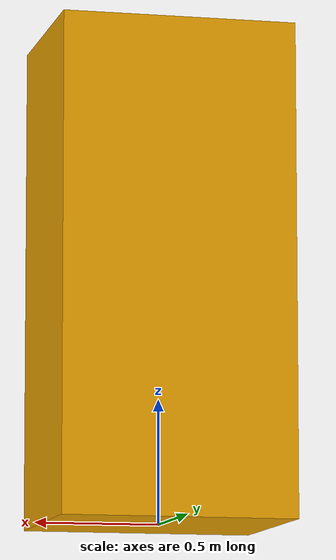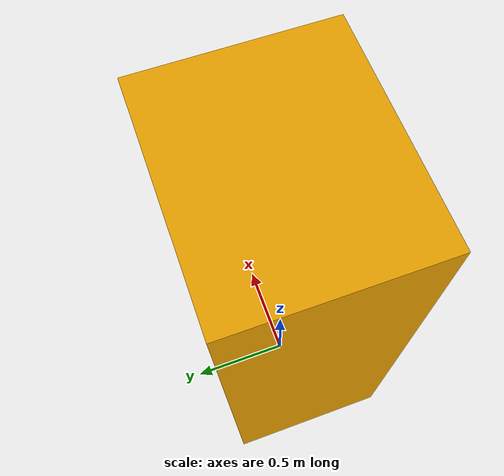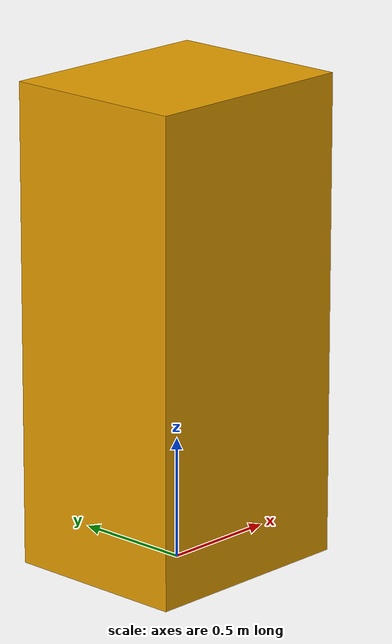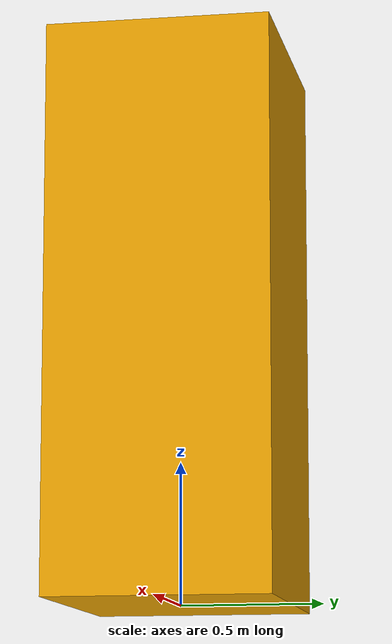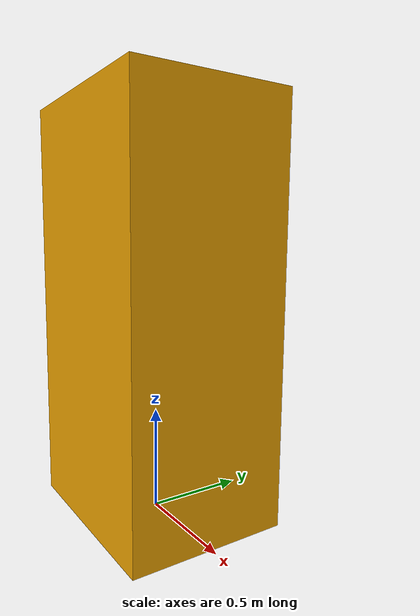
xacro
<?xml version="1.0"?>
<robot xmlns:xacro="http://www.ros.org/wiki/xacro" name="Robot">

<!--LINKS-->
  <link name="base">
    <visual>
	<origin xyz= "0 0 0.99" rpy = "0 0 0"/>
        <geometry>
                <box size= "0.94 0.78 1.98"/>
        </geometry>
    </visual>

    <collision>
	<origin xyz= "0 0 0.99" rpy = "0 0 0"/>
        <geometry>
                <box size= "0.94 0.78 1.98"/>
        </geometry>
    </collision>
  </link>

<link name="laser_vert_bottom">
    <visual>
        <geometry>
                <box size= "0.062 0.062 0.087"/>
        </geometry>
    </visual>

    <collision>
        <geometry>
                <box size= "0.062 0.062 0.087"/>
        </geometry>
    </collision>
  </link>

  <link name="laser_vert_top_right">
    <visual>
        <geometry>
                <box size= "0.062 0.062 0.087"/>
        </geometry>
    </visual>

    <collision>
        <geometry>
                <box size= "0.062 0.062 0.087"/>
        </geometry>
    </collision>
  </link>

  <link name="laser_vert_top_left">
    <visual>
        <geometry>
                <box size= "0.062 0.062 0.087"/>
        </geometry>
    </visual>

    <collision>
        <geometry>
                <box size= "0.062 0.062 0.087"/>
        </geometry>
    </collision>
  </link>

<link name="laser_horiz">
    <visual>
        <geometry>
                <cylinder radius= ".052" length= "0.072"/>
        </geometry>
    </visual>

    <collision>
        <geometry>
                <cylinder radius= ".052" length= "0.072"/>
        </geometry>
    </collision>
  </link>

<!--wheels-->
<xacro:macro name="xacro_name" params="suffix reflect">
<xacro:xacro_name suffix="left" reflect="1" />
<link name = "wheel_${suffix}">
        <visual>
                <origin xyz="-0.10 ${reflect * 0.4} 0" />
                <geometry>
                        <cylinder radius="0.2" length="0.05"/>
                </geometry>
         </visual>

        <collision>
                <origin xyz="-0.10 ${reflect * 0.4} 0" />
                <geometry>
                        <cylinder radius="0.2" length="0.05"/>
                </geometry>
        </collision>
</link>
<joint name="wheel_${suffix}" type="fixed">
        <origin xyz="-0.10 0.4 0.0" rpy="-1.57 0 0"/>
        <parent link="base"/>
        <child link="wheel_${suffix}"/>
</joint>
</xacro:macro>

<!-- right wheel -->
<xacro:macro name="xacro_name" params="suffix reflect">
<xacro:xacro_name suffix="right" reflect="1" />
<link name = "wheel_${suffix}">
        <visual>
                <origin xyz="-0.10 ${reflect * -0.4} 0" />
                <geometry>
                        <cylinder radius="0.2" length="0.05"/>
                </geometry>
         </visual>

        <collision>
                <origin xyz="-0.10 ${reflect * -0.4} 0" />
                <geometry>
                        <cylinder radius="0.2" length="0.05"/>
                </geometry>
        </collision>
</link>
<joint name="wheel_${suffix}" type="fixed">
        <origin xyz="-0.10 -0.4 0.0" rpy="-1.57 0 0"/>
        <parent link="base"/>
        <child link="wheel_${suffix}"/>
</joint>
</xacro:macro>

<!--ADD CENTER WHEEL THE SAME AS WE DID THE LINKS AND JOINTS-->
<xacro:macro name="xacro_name" params="suffix">
<xacro:xacro_name suffix="center"/>
<link name = "wheel_${suffix}">
        <visual>
                <origin xyz="0.10 0 0" />
                <geometry>
                        <cylinder radius="0.15" length="0.05"/>
                </geometry>
         </visual>

        <collision>
                <origin xyz="0.10 0 0" />
                <geometry>
                        <cylinder radius="0.15" length="0.05"/>
                </geometry>
        </collision>
</link>

<joint name="wheel_${suffix}" type="fixed">
        <origin xyz="-0.10 0 0" rpy="-1.57 0 0"/>
        <parent link="base"/>
        <child link="wheel_${suffix}"/>
</joint>
</xacro:macro>

<!-- JOINTS-->

<joint name="base_laser_vert_bottom_joint" type="fixed">
    <parent link="base"/>
    <child link="laser_vert_bottom"/>
    <origin xyz="0.3158 -0.0021 0.5100" rpy="3.1355 -1.3045 0.0025" />
  </joint>

<joint name="base_laser_vert_top_right_joint" type="fixed">
    <parent link="base"/>
    <child link="laser_vert_top_right"/>
    <origin xyz="0.2978 -0.1450 1.8451" rpy="-1.1760 0.6313 1.9377" />
  </joint>

<joint name="base_laser_vert_top_left_joint" type="fixed">
    <parent link="base"/>
    <child link="laser_vert_top_left"/>
    <origin xyz="0.2997 0.1531 1.8443" rpy="1.1780 0.6198 1.9560" />
  </joint>

  <joint name="base_laser_horiz_joint" type="fixed">
    <parent link="base"/>
    <child link="laser_horiz"/>
    <origin xyz="0.2325 0.0001 1.9201" rpy="-0.0012068 0.114646 -0.0015308" />
  </joint>
</robot>
